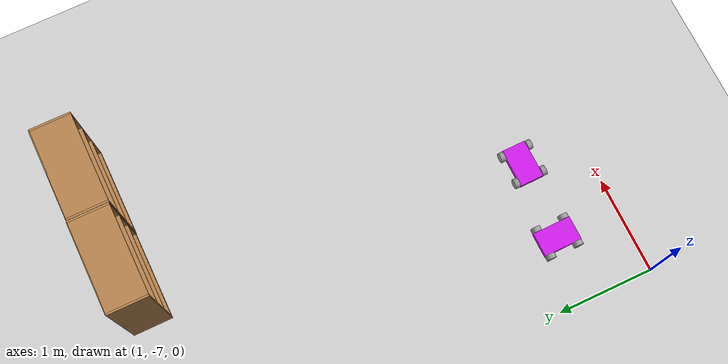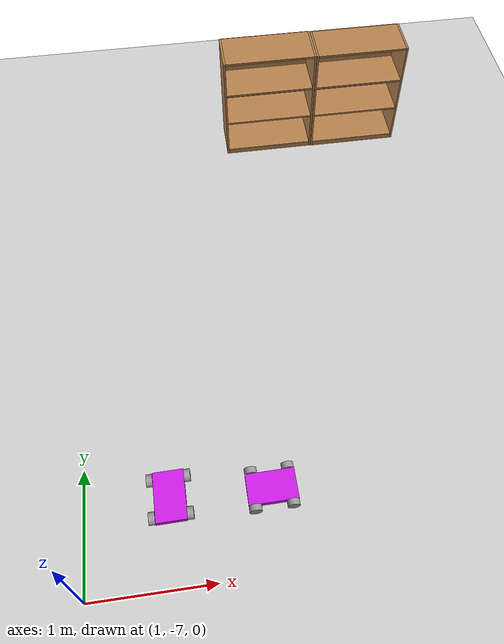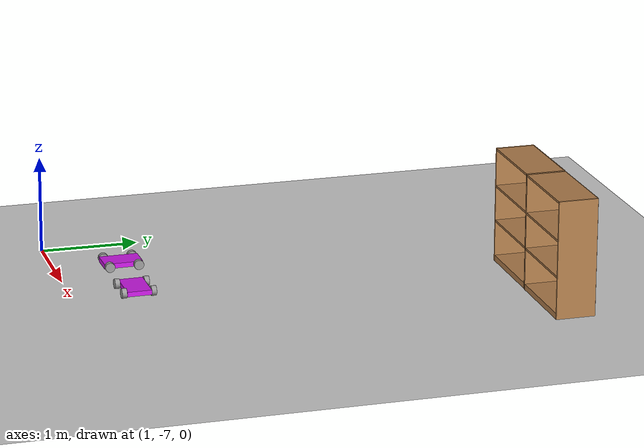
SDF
<sdf version="1.6">
 <world name="default">
  <model name="ground_plane">
   <static>1</static>
   <link name="link">
    <collision name="collision">
     <geometry><plane><normal>0 0 1</normal><size>100 100</size></plane></geometry>
     <surface><friction><ode><mu>100</mu><mu2>50</mu2></ode></friction></surface>
    </collision>
    <visual name="visual">
     <cast_shadows>0</cast_shadows>
     <geometry><plane><normal>0 0 1</normal><size>100 100</size></plane></geometry>
     <material>
      <script><uri>file://media/materials/scripts/gazebo.material</uri><name>Gazebo/Grey</name></script>
     </material>
    </visual>
   </link>
  </model>
  <model name="RobotCar_0">
   <link name="link_0">
    <inertial>
     <mass>1</mass>
     <inertia>
      <ixx>0.166667</ixx>
      <ixy>0</ixy>
      <ixz>0</ixz>
      <iyy>0.166667</iyy>
      <iyz>0</iyz>
      <izz>0.166667</izz>
     </inertia>
    </inertial>
    <pose>0.074066 0.027028 0 0 -0 0</pose>
    <visual name="visual">
     <geometry><box><size>0.25 0.4 0.05</size></box></geometry>
     <material>
      <lighting>1</lighting>
      <script><uri>file://media/materials/scripts/gazebo.material</uri><name>Gazebo/Grey</name></script>
      <shader type="pixel"><normal_map>__default__</normal_map></shader>
      <ambient>0.8 0.1 0.9 1</ambient>
      <diffuse>0.8 0.1 0.9 1</diffuse>
      <specular>0.01 0.01 0.01 1</specular>
      <emissive>0 0 0 1</emissive>
     </material>
    </visual>
    <collision name="collision">
     <geometry><box><size>0.25 0.4 0.05</size></box></geometry>
     <surface>
      <friction>
       <ode><mu>1</mu><mu2>1</mu2><fdir1>0 0 0</fdir1><slip1>0</slip1><slip2>0</slip2></ode>
       <torsional>
        <coefficient>1</coefficient>
        <patch_radius>0</patch_radius>
        <surface_radius>0</surface_radius>
        <use_patch_radius>1</use_patch_radius>
        <ode><slip>0</slip></ode>
       </torsional>
      </friction>
      <bounce><restitution_coefficient>0</restitution_coefficient><threshold>1e+06</threshold></bounce>
      <contact>
       <collide_without_contact>0</collide_without_contact>
       <collide_without_contact_bitmask>1</collide_without_contact_bitmask>
       <collide_bitmask>1</collide_bitmask>
       <ode>
        <soft_cfm>0</soft_cfm>
        <soft_erp>0.2</soft_erp>
        <kp>1e+13</kp>
        <kd>1</kd>
        <max_vel>0.01</max_vel>
        <min_depth>0</min_depth>
       </ode>
       <bullet>
        <split_impulse>1</split_impulse>
        <split_impulse_penetration_threshold>-0.01</split_impulse_penetration_threshold>
        <soft_cfm>0</soft_cfm>
        <soft_erp>0.2</soft_erp>
        <kp>1e+13</kp>
        <kd>1</kd>
       </bullet>
      </contact>
     </surface>
    </collision>
   </link>
   <link name="link_1_clone_0">
    <inertial>
     <mass>1</mass>
     <inertia><ixx>0.145833</ixx><ixy>0</ixy><ixz>0</ixz><iyy>0.145833</iyy><iyz>0</iyz><izz>0.125</izz></inertia>
    </inertial>
    <pose>-0.075934 0.177028 0 1.5707 0 1.5707</pose>
    <visual name="visual">
     <geometry><cylinder><radius>0.05</radius><length>0.05</length></cylinder></geometry>
     <material>
      <lighting>1</lighting>
      <script><uri>file://media/materials/scripts/gazebo.material</uri><name>Gazebo/Grey</name></script>
      <shader type="pixel"><normal_map>__default__</normal_map></shader>
      <ambient>0.3 0.3 0.3 1</ambient>
      <diffuse>0.7 0.7 0.7 1</diffuse>
      <specular>0.01 0.01 0.01 1</specular>
      <emissive>0 0 0 1</emissive>
     </material>
    </visual>
    <collision name="collision">
     <geometry><cylinder><radius>0.05</radius><length>0.05</length></cylinder></geometry>
     <surface>
      <friction>
       <ode><mu>1</mu><mu2>1</mu2><fdir1>0 0 0</fdir1><slip1>0</slip1><slip2>0</slip2></ode>
       <torsional>
        <coefficient>1</coefficient>
        <patch_radius>0</patch_radius>
        <surface_radius>0</surface_radius>
        <use_patch_radius>1</use_patch_radius>
        <ode><slip>0</slip></ode>
       </torsional>
      </friction>
      <bounce><restitution_coefficient>0</restitution_coefficient><threshold>1e+06</threshold></bounce>
      <contact>
       <collide_without_contact>0</collide_without_contact>
       <collide_without_contact_bitmask>1</collide_without_contact_bitmask>
       <collide_bitmask>1</collide_bitmask>
       <ode>
        <soft_cfm>0</soft_cfm>
        <soft_erp>0.2</soft_erp>
        <kp>1e+13</kp>
        <kd>1</kd>
        <max_vel>0.01</max_vel>
        <min_depth>0</min_depth>
       </ode>
       <bullet>
        <split_impulse>1</split_impulse>
        <split_impulse_penetration_threshold>-0.01</split_impulse_penetration_threshold>
        <soft_cfm>0</soft_cfm>
        <soft_erp>0.2</soft_erp>
        <kp>1e+13</kp>
        <kd>1</kd>
       </bullet>
      </contact>
     </surface>
    </collision>
   </link>
   <link name="link_1_clone_0_clone">
    <inertial>
     <mass>1</mass>
     <inertia><ixx>0.145833</ixx><ixy>0</ixy><ixz>0</ixz><iyy>0.145833</iyy><iyz>0</iyz><izz>0.125</izz></inertia>
    </inertial>
    <pose>0.224066 0.177028 0 1.5707 0 1.5707</pose>
    <visual name="visual">
     <geometry><cylinder><radius>0.05</radius><length>0.05</length></cylinder></geometry>
     <material>
      <lighting>1</lighting>
      <script><uri>file://media/materials/scripts/gazebo.material</uri><name>Gazebo/Grey</name></script>
      <shader type="pixel"><normal_map>__default__</normal_map></shader>
      <ambient>0.3 0.3 0.3 1</ambient>
      <diffuse>0.7 0.7 0.7 1</diffuse>
      <specular>0.01 0.01 0.01 1</specular>
      <emissive>0 0 0 1</emissive>
     </material>
    </visual>
    <collision name="collision">
     <geometry><cylinder><radius>0.05</radius><length>0.05</length></cylinder></geometry>
     <surface>
      <friction>
       <ode><mu>1</mu><mu2>1</mu2><fdir1>0 0 0</fdir1><slip1>0</slip1><slip2>0</slip2></ode>
       <torsional>
        <coefficient>1</coefficient>
        <patch_radius>0</patch_radius>
        <surface_radius>0</surface_radius>
        <use_patch_radius>1</use_patch_radius>
        <ode><slip>0</slip></ode>
       </torsional>
      </friction>
      <bounce><restitution_coefficient>0</restitution_coefficient><threshold>1e+06</threshold></bounce>
      <contact>
       <collide_without_contact>0</collide_without_contact>
       <collide_without_contact_bitmask>1</collide_without_contact_bitmask>
       <collide_bitmask>1</collide_bitmask>
       <ode>
        <soft_cfm>0</soft_cfm>
        <soft_erp>0.2</soft_erp>
        <kp>1e+13</kp>
        <kd>1</kd>
        <max_vel>0.01</max_vel>
        <min_depth>0</min_depth>
       </ode>
       <bullet>
        <split_impulse>1</split_impulse>
        <split_impulse_penetration_threshold>-0.01</split_impulse_penetration_threshold>
        <soft_cfm>0</soft_cfm>
        <soft_erp>0.2</soft_erp>
        <kp>1e+13</kp>
        <kd>1</kd>
       </bullet>
      </contact>
     </surface>
    </collision>
   </link>
   <link name="link_1_clone_1">
    <inertial>
     <mass>1</mass>
     <inertia><ixx>0.145833</ixx><ixy>0</ixy><ixz>0</ixz><iyy>0.145833</iyy><iyz>0</iyz><izz>0.125</izz></inertia>
    </inertial>
    <pose>0.224066 -0.122972 0 1.5707 0 1.5707</pose>
    <visual name="visual">
     <geometry><cylinder><radius>0.05</radius><length>0.05</length></cylinder></geometry>
     <material>
      <lighting>1</lighting>
      <script><uri>file://media/materials/scripts/gazebo.material</uri><name>Gazebo/Grey</name></script>
      <shader type="pixel"><normal_map>__default__</normal_map></shader>
      <ambient>0.3 0.3 0.3 1</ambient>
      <diffuse>0.7 0.7 0.7 1</diffuse>
      <specular>0.01 0.01 0.01 1</specular>
      <emissive>0 0 0 1</emissive>
     </material>
    </visual>
    <collision name="collision">
     <geometry><cylinder><radius>0.05</radius><length>0.05</length></cylinder></geometry>
     <surface>
      <friction>
       <ode><mu>1</mu><mu2>1</mu2><fdir1>0 0 0</fdir1><slip1>0</slip1><slip2>0</slip2></ode>
       <torsional>
        <coefficient>1</coefficient>
        <patch_radius>0</patch_radius>
        <surface_radius>0</surface_radius>
        <use_patch_radius>1</use_patch_radius>
        <ode><slip>0</slip></ode>
       </torsional>
      </friction>
      <bounce><restitution_coefficient>0</restitution_coefficient><threshold>1e+06</threshold></bounce>
      <contact>
       <collide_without_contact>0</collide_without_contact>
       <collide_without_contact_bitmask>1</collide_without_contact_bitmask>
       <collide_bitmask>1</collide_bitmask>
       <ode>
        <soft_cfm>0</soft_cfm>
        <soft_erp>0.2</soft_erp>
        <kp>1e+13</kp>
        <kd>1</kd>
        <max_vel>0.01</max_vel>
        <min_depth>0</min_depth>
       </ode>
       <bullet>
        <split_impulse>1</split_impulse>
        <split_impulse_penetration_threshold>-0.01</split_impulse_penetration_threshold>
        <soft_cfm>0</soft_cfm>
        <soft_erp>0.2</soft_erp>
        <kp>1e+13</kp>
        <kd>1</kd>
       </bullet>
      </contact>
     </surface>
    </collision>
   </link>
   <link name="link_1_clone_2">
    <inertial>
     <mass>1</mass>
     <inertia><ixx>0.145833</ixx><ixy>0</ixy><ixz>0</ixz><iyy>0.145833</iyy><iyz>0</iyz><izz>0.125</izz></inertia>
    </inertial>
    <pose>-0.075934 -0.122972 0 1.5707 0 1.5707</pose>
    <visual name="visual">
     <geometry><cylinder><radius>0.05</radius><length>0.05</length></cylinder></geometry>
     <material>
      <lighting>1</lighting>
      <script><uri>file://media/materials/scripts/gazebo.material</uri><name>Gazebo/Grey</name></script>
      <shader type="pixel"><normal_map>__default__</normal_map></shader>
      <ambient>0.3 0.3 0.3 1</ambient>
      <diffuse>0.7 0.7 0.7 1</diffuse>
      <specular>0.01 0.01 0.01 1</specular>
      <emissive>0 0 0 1</emissive>
     </material>
    </visual>
    <collision name="collision">
     <geometry><cylinder><radius>0.05</radius><length>0.05</length></cylinder></geometry>
     <surface>
      <friction>
       <ode><mu>1</mu><mu2>1</mu2><fdir1>0 0 0</fdir1><slip1>0</slip1><slip2>0</slip2></ode>
       <torsional>
        <coefficient>1</coefficient>
        <patch_radius>0</patch_radius>
        <surface_radius>0</surface_radius>
        <use_patch_radius>1</use_patch_radius>
        <ode><slip>0</slip></ode>
       </torsional>
      </friction>
      <bounce><restitution_coefficient>0</restitution_coefficient><threshold>1e+06</threshold></bounce>
      <contact>
       <collide_without_contact>0</collide_without_contact>
       <collide_without_contact_bitmask>1</collide_without_contact_bitmask>
       <collide_bitmask>1</collide_bitmask>
       <ode>
        <soft_cfm>0</soft_cfm>
        <soft_erp>0.2</soft_erp>
        <kp>1e+13</kp>
        <kd>1</kd>
        <max_vel>0.01</max_vel>
        <min_depth>0</min_depth>
       </ode>
       <bullet>
        <split_impulse>1</split_impulse>
        <split_impulse_penetration_threshold>-0.01</split_impulse_penetration_threshold>
        <soft_cfm>0</soft_cfm>
        <soft_erp>0.2</soft_erp>
        <kp>1e+13</kp>
        <kd>1</kd>
       </bullet>
      </contact>
     </surface>
    </collision>
   </link>
   <joint name="link_0_JOINT_6" type="revolute">
    <parent>link_0</parent>
    <child>link_1_clone_1</child>
    <axis>
     <xyz>0 0 1</xyz>
     <use_parent_model_frame>0</use_parent_model_frame>
     <limit>
      <lower>-1.79769e+308</lower>
      <upper>1.79769e+308</upper>
      <effort>-1</effort>
      <velocity>-1</velocity>
     </limit>
     <dynamics>
      <spring_reference>0</spring_reference>
      <spring_stiffness>0</spring_stiffness>
      <damping>0</damping>
     </dynamics>
    </axis>
    <physics>
     <ode><limit><cfm>0</cfm><erp>0.2</erp></limit><suspension><cfm>0</cfm><erp>0.2</erp></suspension></ode>
    </physics>
   </joint>
   <joint name="link_0_JOINT_7" type="revolute">
    <parent>link_0</parent>
    <child>link_1_clone_2</child>
    <axis>
     <xyz>0 0 1</xyz>
     <use_parent_model_frame>0</use_parent_model_frame>
     <limit>
      <lower>-1.79769e+308</lower>
      <upper>1.79769e+308</upper>
      <effort>-1</effort>
      <velocity>-1</velocity>
     </limit>
     <dynamics>
      <spring_reference>0</spring_reference>
      <spring_stiffness>0</spring_stiffness>
      <damping>0</damping>
     </dynamics>
    </axis>
    <physics>
     <ode><limit><cfm>0</cfm><erp>0.2</erp></limit><suspension><cfm>0</cfm><erp>0.2</erp></suspension></ode>
    </physics>
   </joint>
   <joint name="link_0_JOINT_8" type="revolute">
    <parent>link_0</parent>
    <child>link_1_clone_0_clone</child>
    <axis>
     <xyz>0 0 1</xyz>
     <use_parent_model_frame>0</use_parent_model_frame>
     <limit>
      <lower>-1.79769e+308</lower>
      <upper>1.79769e+308</upper>
      <effort>-1</effort>
      <velocity>-1</velocity>
     </limit>
     <dynamics>
      <spring_reference>0</spring_reference>
      <spring_stiffness>0</spring_stiffness>
      <damping>0</damping>
     </dynamics>
    </axis>
    <physics>
     <ode><limit><cfm>0</cfm><erp>0.2</erp></limit><suspension><cfm>0</cfm><erp>0.2</erp></suspension></ode>
    </physics>
   </joint>
   <joint name="link_0_JOINT_9" type="revolute">
    <parent>link_0</parent>
    <child>link_1_clone_0</child>
    <axis>
     <xyz>0 0 1</xyz>
     <use_parent_model_frame>0</use_parent_model_frame>
     <limit>
      <lower>-1.79769e+308</lower>
      <upper>1.79769e+308</upper>
      <effort>-1</effort>
      <velocity>-1</velocity>
     </limit>
     <dynamics>
      <spring_reference>0</spring_reference>
      <spring_stiffness>0</spring_stiffness>
      <damping>0</damping>
     </dynamics>
    </axis>
    <physics>
     <ode><limit><cfm>0</cfm><erp>0.2</erp></limit><suspension><cfm>0</cfm><erp>0.2</erp></suspension></ode>
    </physics>
   </joint>
   <static>0</static>
   <pose>1.60171 -6.34659 0.050002 1e-06 1e-06 0.01081</pose>
  </model>
  <model name="bookshelf">
   <static>1</static>
   <link name="link">
    <inertial><mass>1</mass></inertial>
    <collision name="back">
     <pose>0 0.005 0.6 0 -0 0</pose>
     <geometry><box><size>0.9 0.01 1.2</size></box></geometry>
    </collision>
    <visual name="visual1">
     <pose>0 0.005 0.6 0 -0 0</pose>
     <geometry><box><size>0.9 0.01 1.2</size></box></geometry>
     <material>
      <script><uri>file://media/materials/scripts/gazebo.material</uri><name>Gazebo/Wood</name></script>
     </material>
    </visual>
    <collision name="left_side">
     <pose>0.45 -0.195 0.6 0 -0 0</pose>
     <geometry><box><size>0.02 0.4 1.2</size></box></geometry>
    </collision>
    <visual name="visual2">
     <pose>0.45 -0.195 0.6 0 -0 0</pose>
     <geometry><box><size>0.02 0.4 1.2</size></box></geometry>
     <material>
      <script><uri>file://media/materials/scripts/gazebo.material</uri><name>Gazebo/Wood</name></script>
     </material>
    </visual>
    <collision name="right_side">
     <pose>-0.45 -0.195 0.6 0 -0 0</pose>
     <geometry><box><size>0.02 0.4 1.2</size></box></geometry>
    </collision>
    <visual name="visual3">
     <pose>-0.45 -0.195 0.6 0 -0 0</pose>
     <geometry><box><size>0.02 0.4 1.2</size></box></geometry>
     <material>
      <script><uri>file://media/materials/scripts/gazebo.material</uri><name>Gazebo/Wood</name></script>
     </material>
    </visual>
    <collision name="bottom">
     <pose>0 -0.195 0.03 0 -0 0</pose>
     <geometry><box><size>0.88 0.4 0.06</size></box></geometry>
    </collision>
    <visual name="visual4">
     <pose>0 -0.195 0.03 0 -0 0</pose>
     <geometry><box><size>0.88 0.4 0.06</size></box></geometry>
     <material>
      <script><uri>file://media/materials/scripts/gazebo.material</uri><name>Gazebo/Wood</name></script>
     </material>
    </visual>
    <collision name="top">
     <pose>0 -0.195 1.19 0 -0 0</pose>
     <geometry><box><size>0.88 0.4 0.02</size></box></geometry>
    </collision>
    <visual name="visual5">
     <pose>0 -0.195 1.19 0 -0 0</pose>
     <geometry><box><size>0.88 0.4 0.02</size></box></geometry>
     <material>
      <script><uri>file://media/materials/scripts/gazebo.material</uri><name>Gazebo/Wood</name></script>
     </material>
    </visual>
    <collision name="low_shelf">
     <pose>0 -0.195 0.43 0 -0 0</pose>
     <geometry><box><size>0.88 0.4 0.02</size></box></geometry>
    </collision>
    <visual name="visual6">
     <pose>0 -0.195 0.43 0 -0 0</pose>
     <geometry><box><size>0.88 0.4 0.02</size></box></geometry>
     <material>
      <script><uri>file://media/materials/scripts/gazebo.material</uri><name>Gazebo/Wood</name></script>
     </material>
    </visual>
    <collision name="high_shelf">
     <pose>0 -0.195 0.8 0 -0 0</pose>
     <geometry><box><size>0.88 0.4 0.02</size></box></geometry>
    </collision>
    <visual name="visual7">
     <pose>0 -0.195 0.8 0 -0 0</pose>
     <geometry><box><size>0.88 0.4 0.02</size></box></geometry>
     <material>
      <script><uri>file://media/materials/scripts/gazebo.material</uri><name>Gazebo/Wood</name></script>
     </material>
    </visual>
   </link>
   <pose>3.02057 -2.21523 0 0 -0 0</pose>
  </model>
  <model name="bookshelf_0">
   <static>1</static>
   <link name="link">
    <inertial><mass>1</mass></inertial>
    <collision name="back">
     <pose>0 0.005 0.6 0 -0 0</pose>
     <geometry><box><size>0.9 0.01 1.2</size></box></geometry>
    </collision>
    <visual name="visual1">
     <pose>0 0.005 0.6 0 -0 0</pose>
     <geometry><box><size>0.9 0.01 1.2</size></box></geometry>
     <material>
      <script><uri>file://media/materials/scripts/gazebo.material</uri><name>Gazebo/Wood</name></script>
     </material>
    </visual>
    <collision name="left_side">
     <pose>0.45 -0.195 0.6 0 -0 0</pose>
     <geometry><box><size>0.02 0.4 1.2</size></box></geometry>
    </collision>
    <visual name="visual2">
     <pose>0.45 -0.195 0.6 0 -0 0</pose>
     <geometry><box><size>0.02 0.4 1.2</size></box></geometry>
     <material>
      <script><uri>file://media/materials/scripts/gazebo.material</uri><name>Gazebo/Wood</name></script>
     </material>
    </visual>
    <collision name="right_side">
     <pose>-0.45 -0.195 0.6 0 -0 0</pose>
     <geometry><box><size>0.02 0.4 1.2</size></box></geometry>
    </collision>
    <visual name="visual3">
     <pose>-0.45 -0.195 0.6 0 -0 0</pose>
     <geometry><box><size>0.02 0.4 1.2</size></box></geometry>
     <material>
      <script><uri>file://media/materials/scripts/gazebo.material</uri><name>Gazebo/Wood</name></script>
     </material>
    </visual>
    <collision name="bottom">
     <pose>0 -0.195 0.03 0 -0 0</pose>
     <geometry><box><size>0.88 0.4 0.06</size></box></geometry>
    </collision>
    <visual name="visual4">
     <pose>0 -0.195 0.03 0 -0 0</pose>
     <geometry><box><size>0.88 0.4 0.06</size></box></geometry>
     <material>
      <script><uri>file://media/materials/scripts/gazebo.material</uri><name>Gazebo/Wood</name></script>
     </material>
    </visual>
    <collision name="top">
     <pose>0 -0.195 1.19 0 -0 0</pose>
     <geometry><box><size>0.88 0.4 0.02</size></box></geometry>
    </collision>
    <visual name="visual5">
     <pose>0 -0.195 1.19 0 -0 0</pose>
     <geometry><box><size>0.88 0.4 0.02</size></box></geometry>
     <material>
      <script><uri>file://media/materials/scripts/gazebo.material</uri><name>Gazebo/Wood</name></script>
     </material>
    </visual>
    <collision name="low_shelf">
     <pose>0 -0.195 0.43 0 -0 0</pose>
     <geometry><box><size>0.88 0.4 0.02</size></box></geometry>
    </collision>
    <visual name="visual6">
     <pose>0 -0.195 0.43 0 -0 0</pose>
     <geometry><box><size>0.88 0.4 0.02</size></box></geometry>
     <material>
      <script><uri>file://media/materials/scripts/gazebo.material</uri><name>Gazebo/Wood</name></script>
     </material>
    </visual>
    <collision name="high_shelf">
     <pose>0 -0.195 0.8 0 -0 0</pose>
     <geometry><box><size>0.88 0.4 0.02</size></box></geometry>
    </collision>
    <visual name="visual7">
     <pose>0 -0.195 0.8 0 -0 0</pose>
     <geometry><box><size>0.88 0.4 0.02</size></box></geometry>
     <material>
      <script><uri>file://media/materials/scripts/gazebo.material</uri><name>Gazebo/Wood</name></script>
     </material>
    </visual>
   </link>
   <pose>3.94175 -2.21978 0 0 -0 0</pose>
  </model>
  <model name="RobotCar_0_clone">
   <link name="link_0">
    <inertial>
     <mass>1</mass>
     <inertia>
      <ixx>0.166667</ixx>
      <ixy>0</ixy>
      <ixz>0</ixz>
      <iyy>0.166667</iyy>
      <iyz>0</iyz>
      <izz>0.166667</izz>
     </inertia>
    </inertial>
    <pose>0.074066 0.027028 0 0 -0 0</pose>
    <visual name="visual">
     <geometry><box><size>0.25 0.4 0.05</size></box></geometry>
     <material>
      <lighting>1</lighting>
      <script><uri>file://media/materials/scripts/gazebo.material</uri><name>Gazebo/Grey</name></script>
      <shader type="pixel"><normal_map>__default__</normal_map></shader>
      <ambient>0.8 0.1 0.9 1</ambient>
      <diffuse>0.8 0.1 0.9 1</diffuse>
      <specular>0.01 0.01 0.01 1</specular>
      <emissive>0 0 0 1</emissive>
     </material>
    </visual>
    <collision name="collision">
     <geometry><box><size>0.25 0.4 0.05</size></box></geometry>
     <surface>
      <friction>
       <ode><mu>1</mu><mu2>1</mu2><fdir1>0 0 0</fdir1><slip1>0</slip1><slip2>0</slip2></ode>
       <torsional>
        <coefficient>1</coefficient>
        <patch_radius>0</patch_radius>
        <surface_radius>0</surface_radius>
        <use_patch_radius>1</use_patch_radius>
        <ode><slip>0</slip></ode>
       </torsional>
      </friction>
      <bounce><restitution_coefficient>0</restitution_coefficient><threshold>1e+06</threshold></bounce>
      <contact>
       <collide_without_contact>0</collide_without_contact>
       <collide_without_contact_bitmask>1</collide_without_contact_bitmask>
       <collide_bitmask>1</collide_bitmask>
       <ode>
        <soft_cfm>0</soft_cfm>
        <soft_erp>0.2</soft_erp>
        <kp>1e+13</kp>
        <kd>1</kd>
        <max_vel>0.01</max_vel>
        <min_depth>0</min_depth>
       </ode>
       <bullet>
        <split_impulse>1</split_impulse>
        <split_impulse_penetration_threshold>-0.01</split_impulse_penetration_threshold>
        <soft_cfm>0</soft_cfm>
        <soft_erp>0.2</soft_erp>
        <kp>1e+13</kp>
        <kd>1</kd>
       </bullet>
      </contact>
     </surface>
    </collision>
   </link>
   <link name="link_1_clone_0">
    <inertial>
     <mass>1</mass>
     <inertia><ixx>0.145833</ixx><ixy>0</ixy><ixz>0</ixz><iyy>0.145833</iyy><iyz>0</iyz><izz>0.125</izz></inertia>
    </inertial>
    <pose>-0.075934 0.177028 0 1.5707 0 1.5707</pose>
    <visual name="visual">
     <geometry><cylinder><radius>0.05</radius><length>0.05</length></cylinder></geometry>
     <material>
      <lighting>1</lighting>
      <script><uri>file://media/materials/scripts/gazebo.material</uri><name>Gazebo/Grey</name></script>
      <shader type="pixel"><normal_map>__default__</normal_map></shader>
      <ambient>0.3 0.3 0.3 1</ambient>
      <diffuse>0.7 0.7 0.7 1</diffuse>
      <specular>0.01 0.01 0.01 1</specular>
      <emissive>0 0 0 1</emissive>
     </material>
    </visual>
    <collision name="collision">
     <geometry><cylinder><radius>0.05</radius><length>0.05</length></cylinder></geometry>
     <surface>
      <friction>
       <ode><mu>1</mu><mu2>1</mu2><fdir1>0 0 0</fdir1><slip1>0</slip1><slip2>0</slip2></ode>
       <torsional>
        <coefficient>1</coefficient>
        <patch_radius>0</patch_radius>
        <surface_radius>0</surface_radius>
        <use_patch_radius>1</use_patch_radius>
        <ode><slip>0</slip></ode>
       </torsional>
      </friction>
      <bounce><restitution_coefficient>0</restitution_coefficient><threshold>1e+06</threshold></bounce>
      <contact>
       <collide_without_contact>0</collide_without_contact>
       <collide_without_contact_bitmask>1</collide_without_contact_bitmask>
       <collide_bitmask>1</collide_bitmask>
       <ode>
        <soft_cfm>0</soft_cfm>
        <soft_erp>0.2</soft_erp>
        <kp>1e+13</kp>
        <kd>1</kd>
        <max_vel>0.01</max_vel>
        <min_depth>0</min_depth>
       </ode>
       <bullet>
        <split_impulse>1</split_impulse>
        <split_impulse_penetration_threshold>-0.01</split_impulse_penetration_threshold>
        <soft_cfm>0</soft_cfm>
        <soft_erp>0.2</soft_erp>
        <kp>1e+13</kp>
        <kd>1</kd>
       </bullet>
      </contact>
     </surface>
    </collision>
   </link>
   <link name="link_1_clone_0_clone">
    <inertial>
     <mass>1</mass>
     <inertia><ixx>0.145833</ixx><ixy>0</ixy><ixz>0</ixz><iyy>0.145833</iyy><iyz>0</iyz><izz>0.125</izz></inertia>
    </inertial>
    <pose>0.224066 0.177028 0 1.5707 0 1.5707</pose>
    <visual name="visual">
     <geometry><cylinder><radius>0.05</radius><length>0.05</length></cylinder></geometry>
     <material>
      <lighting>1</lighting>
      <script><uri>file://media/materials/scripts/gazebo.material</uri><name>Gazebo/Grey</name></script>
      <shader type="pixel"><normal_map>__default__</normal_map></shader>
      <ambient>0.3 0.3 0.3 1</ambient>
      <diffuse>0.7 0.7 0.7 1</diffuse>
      <specular>0.01 0.01 0.01 1</specular>
      <emissive>0 0 0 1</emissive>
     </material>
    </visual>
    <collision name="collision">
     <geometry><cylinder><radius>0.05</radius><length>0.05</length></cylinder></geometry>
     <surface>
      <friction>
       <ode><mu>1</mu><mu2>1</mu2><fdir1>0 0 0</fdir1><slip1>0</slip1><slip2>0</slip2></ode>
       <torsional>
        <coefficient>1</coefficient>
        <patch_radius>0</patch_radius>
        <surface_radius>0</surface_radius>
        <use_patch_radius>1</use_patch_radius>
        <ode><slip>0</slip></ode>
       </torsional>
      </friction>
      <bounce><restitution_coefficient>0</restitution_coefficient><threshold>1e+06</threshold></bounce>
      <contact>
       <collide_without_contact>0</collide_without_contact>
       <collide_without_contact_bitmask>1</collide_without_contact_bitmask>
       <collide_bitmask>1</collide_bitmask>
       <ode>
        <soft_cfm>0</soft_cfm>
        <soft_erp>0.2</soft_erp>
        <kp>1e+13</kp>
        <kd>1</kd>
        <max_vel>0.01</max_vel>
        <min_depth>0</min_depth>
       </ode>
       <bullet>
        <split_impulse>1</split_impulse>
        <split_impulse_penetration_threshold>-0.01</split_impulse_penetration_threshold>
        <soft_cfm>0</soft_cfm>
        <soft_erp>0.2</soft_erp>
        <kp>1e+13</kp>
        <kd>1</kd>
       </bullet>
      </contact>
     </surface>
    </collision>
   </link>
   <link name="link_1_clone_1">
    <inertial>
     <mass>1</mass>
     <inertia><ixx>0.145833</ixx><ixy>0</ixy><ixz>0</ixz><iyy>0.145833</iyy><iyz>0</iyz><izz>0.125</izz></inertia>
    </inertial>
    <pose>0.224066 -0.122972 0 1.5707 0 1.5707</pose>
    <visual name="visual">
     <geometry><cylinder><radius>0.05</radius><length>0.05</length></cylinder></geometry>
     <material>
      <lighting>1</lighting>
      <script><uri>file://media/materials/scripts/gazebo.material</uri><name>Gazebo/Grey</name></script>
      <shader type="pixel"><normal_map>__default__</normal_map></shader>
      <ambient>0.3 0.3 0.3 1</ambient>
      <diffuse>0.7 0.7 0.7 1</diffuse>
      <specular>0.01 0.01 0.01 1</specular>
      <emissive>0 0 0 1</emissive>
     </material>
    </visual>
    <collision name="collision">
     <geometry><cylinder><radius>0.05</radius><length>0.05</length></cylinder></geometry>
     <surface>
      <friction>
       <ode><mu>1</mu><mu2>1</mu2><fdir1>0 0 0</fdir1><slip1>0</slip1><slip2>0</slip2></ode>
       <torsional>
        <coefficient>1</coefficient>
        <patch_radius>0</patch_radius>
        <surface_radius>0</surface_radius>
        <use_patch_radius>1</use_patch_radius>
        <ode><slip>0</slip></ode>
       </torsional>
      </friction>
      <bounce><restitution_coefficient>0</restitution_coefficient><threshold>1e+06</threshold></bounce>
      <contact>
       <collide_without_contact>0</collide_without_contact>
       <collide_without_contact_bitmask>1</collide_without_contact_bitmask>
       <collide_bitmask>1</collide_bitmask>
       <ode>
        <soft_cfm>0</soft_cfm>
        <soft_erp>0.2</soft_erp>
        <kp>1e+13</kp>
        <kd>1</kd>
        <max_vel>0.01</max_vel>
        <min_depth>0</min_depth>
       </ode>
       <bullet>
        <split_impulse>1</split_impulse>
        <split_impulse_penetration_threshold>-0.01</split_impulse_penetration_threshold>
        <soft_cfm>0</soft_cfm>
        <soft_erp>0.2</soft_erp>
        <kp>1e+13</kp>
        <kd>1</kd>
       </bullet>
      </contact>
     </surface>
    </collision>
   </link>
   <link name="link_1_clone_2">
    <inertial>
     <mass>1</mass>
     <inertia><ixx>0.145833</ixx><ixy>0</ixy><ixz>0</ixz><iyy>0.145833</iyy><iyz>0</iyz><izz>0.125</izz></inertia>
    </inertial>
    <pose>-0.075934 -0.122972 0 1.5707 0 1.5707</pose>
    <visual name="visual">
     <geometry><cylinder><radius>0.05</radius><length>0.05</length></cylinder></geometry>
     <material>
      <lighting>1</lighting>
      <script><uri>file://media/materials/scripts/gazebo.material</uri><name>Gazebo/Grey</name></script>
      <shader type="pixel"><normal_map>__default__</normal_map></shader>
      <ambient>0.3 0.3 0.3 1</ambient>
      <diffuse>0.7 0.7 0.7 1</diffuse>
      <specular>0.01 0.01 0.01 1</specular>
      <emissive>0 0 0 1</emissive>
     </material>
    </visual>
    <collision name="collision">
     <geometry><cylinder><radius>0.05</radius><length>0.05</length></cylinder></geometry>
     <surface>
      <friction>
       <ode><mu>1</mu><mu2>1</mu2><fdir1>0 0 0</fdir1><slip1>0</slip1><slip2>0</slip2></ode>
       <torsional>
        <coefficient>1</coefficient>
        <patch_radius>0</patch_radius>
        <surface_radius>0</surface_radius>
        <use_patch_radius>1</use_patch_radius>
        <ode><slip>0</slip></ode>
       </torsional>
      </friction>
      <bounce><restitution_coefficient>0</restitution_coefficient><threshold>1e+06</threshold></bounce>
      <contact>
       <collide_without_contact>0</collide_without_contact>
       <collide_without_contact_bitmask>1</collide_without_contact_bitmask>
       <collide_bitmask>1</collide_bitmask>
       <ode>
        <soft_cfm>0</soft_cfm>
        <soft_erp>0.2</soft_erp>
        <kp>1e+13</kp>
        <kd>1</kd>
        <max_vel>0.01</max_vel>
        <min_depth>0</min_depth>
       </ode>
       <bullet>
        <split_impulse>1</split_impulse>
        <split_impulse_penetration_threshold>-0.01</split_impulse_penetration_threshold>
        <soft_cfm>0</soft_cfm>
        <soft_erp>0.2</soft_erp>
        <kp>1e+13</kp>
        <kd>1</kd>
       </bullet>
      </contact>
     </surface>
    </collision>
   </link>
   <joint name="link_0_JOINT_6" type="revolute">
    <parent>link_0</parent>
    <child>link_1_clone_1</child>
    <axis>
     <xyz>0 0 1</xyz>
     <use_parent_model_frame>0</use_parent_model_frame>
     <limit>
      <lower>-1.79769e+308</lower>
      <upper>1.79769e+308</upper>
      <effort>-1</effort>
      <velocity>-1</velocity>
     </limit>
     <dynamics>
      <spring_reference>0</spring_reference>
      <spring_stiffness>0</spring_stiffness>
      <damping>0</damping>
     </dynamics>
    </axis>
    <physics>
     <ode><limit><cfm>0</cfm><erp>0.2</erp></limit><suspension><cfm>0</cfm><erp>0.2</erp></suspension></ode>
    </physics>
   </joint>
   <joint name="link_0_JOINT_7" type="revolute">
    <parent>link_0</parent>
    <child>link_1_clone_2</child>
    <axis>
     <xyz>0 0 1</xyz>
     <use_parent_model_frame>0</use_parent_model_frame>
     <limit>
      <lower>-1.79769e+308</lower>
      <upper>1.79769e+308</upper>
      <effort>-1</effort>
      <velocity>-1</velocity>
     </limit>
     <dynamics>
      <spring_reference>0</spring_reference>
      <spring_stiffness>0</spring_stiffness>
      <damping>0</damping>
     </dynamics>
    </axis>
    <physics>
     <ode><limit><cfm>0</cfm><erp>0.2</erp></limit><suspension><cfm>0</cfm><erp>0.2</erp></suspension></ode>
    </physics>
   </joint>
   <joint name="link_0_JOINT_8" type="revolute">
    <parent>link_0</parent>
    <child>link_1_clone_0_clone</child>
    <axis>
     <xyz>0 0 1</xyz>
     <use_parent_model_frame>0</use_parent_model_frame>
     <limit>
      <lower>-1.79769e+308</lower>
      <upper>1.79769e+308</upper>
      <effort>-1</effort>
      <velocity>-1</velocity>
     </limit>
     <dynamics>
      <spring_reference>0</spring_reference>
      <spring_stiffness>0</spring_stiffness>
      <damping>0</damping>
     </dynamics>
    </axis>
    <physics>
     <ode><limit><cfm>0</cfm><erp>0.2</erp></limit><suspension><cfm>0</cfm><erp>0.2</erp></suspension></ode>
    </physics>
   </joint>
   <joint name="link_0_JOINT_9" type="revolute">
    <parent>link_0</parent>
    <child>link_1_clone_0</child>
    <axis>
     <xyz>0 0 1</xyz>
     <use_parent_model_frame>0</use_parent_model_frame>
     <limit>
      <lower>-1.79769e+308</lower>
      <upper>1.79769e+308</upper>
      <effort>-1</effort>
      <velocity>-1</velocity>
     </limit>
     <dynamics>
      <spring_reference>0</spring_reference>
      <spring_stiffness>0</spring_stiffness>
      <damping>0</damping>
     </dynamics>
    </axis>
    <physics>
     <ode><limit><cfm>0</cfm><erp>0.2</erp></limit><suspension><cfm>0</cfm><erp>0.2</erp></suspension></ode>
    </physics>
   </joint>
   <static>0</static>
   <pose>2.50852 -6.43196 0.050002 1e-06 1e-06 1.58092</pose>
  </model>
 </world>
</sdf>
